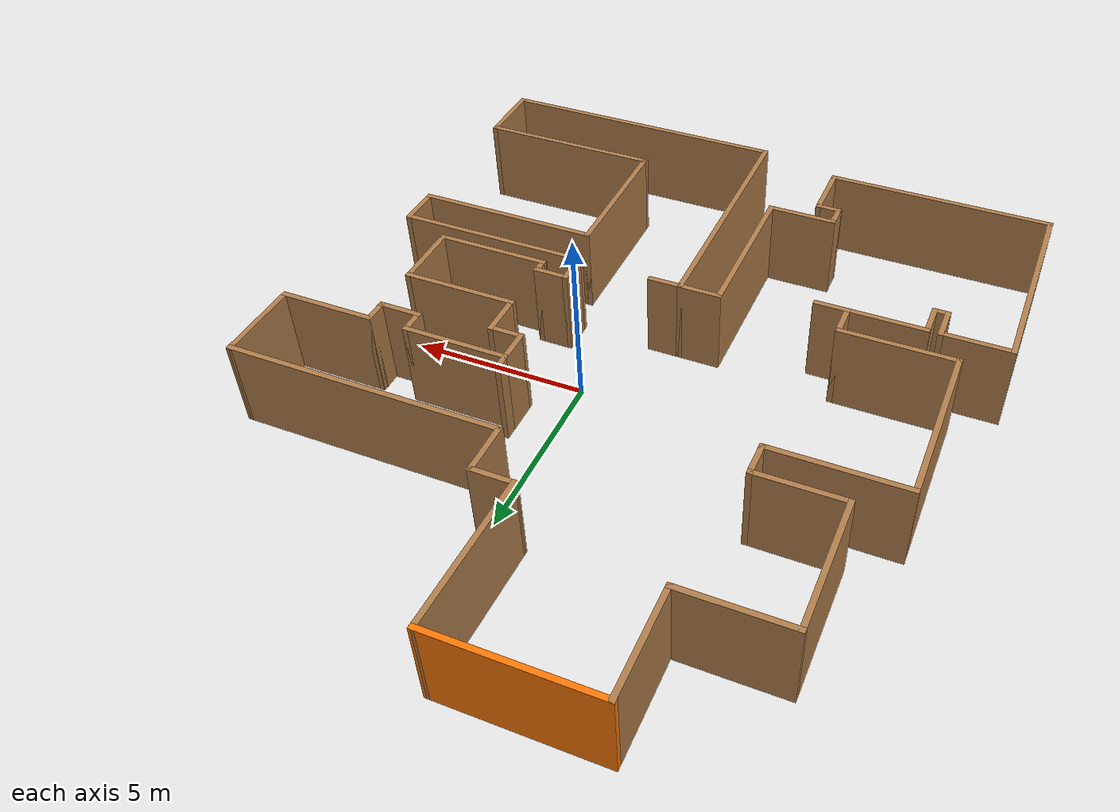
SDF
<?xml version='1.0'?>
<sdf version='1.6'>
  <model name='map_123'>
    <pose frame=''>-1.47589 0.096963 0 0 -0 0</pose>
    <link name='Wall_100'>
      <collision name='Wall_100_Collision'>
        <geometry>
          <box>
            <size>1.25 0.15 2.5</size>
          </box>
        </geometry>
        <pose frame=''>0 0 1.25 0 -0 0</pose>
      </collision>
      <visual name='Wall_100_Visual'>
        <pose frame=''>0 0 1.25 0 -0 0</pose>
        <geometry>
          <box>
            <size>1.25 0.15 2.5</size>
          </box>
        </geometry>
        <material>
          <script>
            <uri>file://media/materials/scripts/gazebo.material</uri>
            <name>Gazebo/Wood</name>
          </script>
          <ambient>1 1 1 1</ambient>
        </material>
        <meta>
          <layer>0</layer>
        </meta>
      </visual>
      <pose frame=''>0.978363 5.41027 0 0 -0 0</pose>
    </link>
    <link name='Wall_101'>
      <collision name='Wall_101_Collision'>
        <geometry>
          <box>
            <size>1.5 0.15 2.5</size>
          </box>
        </geometry>
        <pose frame=''>0 0 1.25 0 -0 0</pose>
      </collision>
      <visual name='Wall_101_Visual'>
        <pose frame=''>0 0 1.25 0 -0 0</pose>
        <geometry>
          <box>
            <size>1.5 0.15 2.5</size>
          </box>
        </geometry>
        <material>
          <script>
            <uri>file://media/materials/scripts/gazebo.material</uri>
            <name>Gazebo/Wood</name>
          </script>
          <ambient>1 1 1 1</ambient>
        </material>
        <meta>
          <layer>0</layer>
        </meta>
      </visual>
      <pose frame=''>1.52836 4.73527 0 0 -0 -1.5708</pose>
    </link>
    <link name='Wall_104'>
      <collision name='Wall_104_Collision'>
        <geometry>
          <box>
            <size>7.75 0.15 2.5</size>
          </box>
        </geometry>
        <pose frame=''>0 0 1.25 0 -0 0</pose>
      </collision>
      <visual name='Wall_104_Visual'>
        <pose frame=''>0 0 1.25 0 -0 0</pose>
        <geometry>
          <box>
            <size>7.75 0.15 2.5</size>
          </box>
        </geometry>
        <material>
          <script>
            <uri>file://media/materials/scripts/gazebo.material</uri>
            <name>Gazebo/Wood</name>
          </script>
          <ambient>1 1 1 1</ambient>
        </material>
        <meta>
          <layer>0</layer>
        </meta>
      </visual>
      <pose frame=''>5.32836 4.06027 0 0 -0 0</pose>
    </link>
    <link name='Wall_105'>
      <collision name='Wall_105_Collision'>
        <geometry>
          <box>
            <size>2.43611 0.15 2.5</size>
          </box>
        </geometry>
        <pose frame=''>0 0 1.25 0 -0 0</pose>
      </collision>
      <visual name='Wall_105_Visual'>
        <pose frame=''>0 0 1.25 0 -0 0</pose>
        <geometry>
          <box>
            <size>2.43611 0.15 2.5</size>
          </box>
        </geometry>
        <material>
          <script>
            <uri>file://media/materials/scripts/gazebo.material</uri>
            <name>Gazebo/Wood</name>
          </script>
          <ambient>1 1 1 1</ambient>
        </material>
        <meta>
          <layer>0</layer>
        </meta>
      </visual>
      <pose frame=''>9.12489 2.91722 0 0 -0 -1.57384</pose>
    </link>
    <link name='Wall_107'>
      <collision name='Wall_107_Collision'>
        <geometry>
          <box>
            <size>0.5 0.15 2.5</size>
          </box>
        </geometry>
        <pose frame=''>0 0 1.25 0 -0 0</pose>
      </collision>
      <visual name='Wall_107_Visual'>
        <pose frame=''>0 0 1.25 0 -0 0</pose>
        <geometry>
          <box>
            <size>0.5 0.15 2.5</size>
          </box>
        </geometry>
        <material>
          <script>
            <uri>file://media/materials/scripts/gazebo.material</uri>
            <name>Gazebo/Wood</name>
          </script>
          <ambient>1 1 1 1</ambient>
        </material>
        <meta>
          <layer>0</layer>
        </meta>
      </visual>
      <pose frame=''>2.57141 1.94917 0 0 -0 1.5708</pose>
    </link>
    <link name='Wall_109'>
      <collision name='Wall_109_Collision'>
        <geometry>
          <box>
            <size>1 0.15 2.5</size>
          </box>
        </geometry>
        <pose frame=''>0 0 1.25 0 -0 0</pose>
      </collision>
      <visual name='Wall_109_Visual'>
        <pose frame=''>0 0 1.25 0 -0 0</pose>
        <geometry>
          <box>
            <size>1 0.15 2.5</size>
          </box>
        </geometry>
        <material>
          <script>
            <uri>file://media/materials/scripts/gazebo.material</uri>
            <name>Gazebo/Wood</name>
          </script>
          <ambient>1 1 1 1</ambient>
        </material>
        <meta>
          <layer>0</layer>
        </meta>
      </visual>
      <pose frame=''>-0.003589 -2.47583 0 0 -0 0</pose>
    </link>
    <link name='Wall_111'>
      <collision name='Wall_111_Collision'>
        <geometry>
          <box>
            <size>1 0.15 2.5</size>
          </box>
        </geometry>
        <pose frame=''>0 0 1.25 0 -0 0</pose>
      </collision>
      <visual name='Wall_111_Visual'>
        <pose frame=''>0 0 1.25 0 -0 0</pose>
        <geometry>
          <box>
            <size>1 0.15 2.5</size>
          </box>
        </geometry>
        <material>
          <script>
            <uri>file://media/materials/scripts/gazebo.material</uri>
            <name>Gazebo/Wood</name>
          </script>
          <ambient>1 1 1 1</ambient>
        </material>
        <meta>
          <layer>0</layer>
        </meta>
      </visual>
      <pose frame=''>-4.40359 -3.17583 0 0 -0 0</pose>
    </link>
    <link name='Wall_17'>
      <collision name='Wall_17_Collision'>
        <geometry>
          <box>
            <size>3 0.15 2.5</size>
          </box>
        </geometry>
        <pose frame=''>0 0 1.25 0 -0 0</pose>
      </collision>
      <visual name='Wall_17_Visual'>
        <pose frame=''>0 0 1.25 0 -0 0</pose>
        <geometry>
          <box>
            <size>3 0.15 2.5</size>
          </box>
        </geometry>
        <material>
          <script>
            <uri>file://media/materials/scripts/gazebo.material</uri>
            <name>Gazebo/Wood</name>
          </script>
          <ambient>1 1 1 1</ambient>
        </material>
        <meta>
          <layer>0</layer>
        </meta>
      </visual>
      <pose frame=''>-3.82859 8.14917 0 0 -0 -1.5708</pose>
    </link>
    <link name='Wall_20'>
      <collision name='Wall_20_Collision'>
        <geometry>
          <box>
            <size>3 0.15 2.5</size>
          </box>
        </geometry>
        <pose frame=''>0 0 1.25 0 -0 0</pose>
      </collision>
      <visual name='Wall_20_Visual'>
        <pose frame=''>0 0 1.25 0 -0 0</pose>
        <geometry>
          <box>
            <size>3 0.15 2.5</size>
          </box>
        </geometry>
        <material>
          <script>
            <uri>file://media/materials/scripts/gazebo.material</uri>
            <name>Gazebo/Wood</name>
          </script>
          <ambient>1 1 1 1</ambient>
        </material>
        <meta>
          <layer>0</layer>
        </meta>
      </visual>
      <pose frame=''>-5.25359 6.72417 0 0 -0 3.14159</pose>
    </link>
    <link name='Wall_21'>
      <collision name='Wall_21_Collision'>
        <geometry>
          <box>
            <size>3.75 0.15 2.5</size>
          </box>
        </geometry>
        <pose frame=''>0 0 1.25 0 -0 0</pose>
      </collision>
      <visual name='Wall_21_Visual'>
        <pose frame=''>0 0 1.25 0 -0 0</pose>
        <geometry>
          <box>
            <size>3.75 0.15 2.5</size>
          </box>
        </geometry>
        <material>
          <script>
            <uri>file://media/materials/scripts/gazebo.material</uri>
            <name>Gazebo/Wood</name>
          </script>
          <ambient>1 1 1 1</ambient>
        </material>
        <meta>
          <layer>0</layer>
        </meta>
      </visual>
      <pose frame=''>-6.67859 4.92417 0 0 -0 -1.5708</pose>
    </link>
    <link name='Wall_22'>
      <collision name='Wall_22_Collision'>
        <geometry>
          <box>
            <size>2.5 0.15 2.5</size>
          </box>
        </geometry>
        <pose frame=''>0 0 1.25 0 -0 0</pose>
      </collision>
      <visual name='Wall_22_Visual'>
        <pose frame=''>0 0 1.25 0 -0 0</pose>
        <geometry>
          <box>
            <size>2.5 0.15 2.5</size>
          </box>
        </geometry>
        <material>
          <script>
            <uri>file://media/materials/scripts/gazebo.material</uri>
            <name>Gazebo/Wood</name>
          </script>
          <ambient>1 1 1 1</ambient>
        </material>
        <meta>
          <layer>0</layer>
        </meta>
      </visual>
      <pose frame=''>-5.50359 3.12417 0 0 -0 0</pose>
    </link>
    <link name='Wall_23'>
      <collision name='Wall_23_Collision'>
        <geometry>
          <box>
            <size>1 0.15 2.5</size>
          </box>
        </geometry>
        <pose frame=''>0 0 1.25 0 -0 0</pose>
      </collision>
      <visual name='Wall_23_Visual'>
        <pose frame=''>0 0 1.25 0 -0 0</pose>
        <geometry>
          <box>
            <size>1 0.15 2.5</size>
          </box>
        </geometry>
        <material>
          <script>
            <uri>file://media/materials/scripts/gazebo.material</uri>
            <name>Gazebo/Wood</name>
          </script>
          <ambient>1 1 1 1</ambient>
        </material>
        <meta>
          <layer>0</layer>
        </meta>
      </visual>
      <pose frame=''>-4.32859 2.69917 0 0 -0 -1.5708</pose>
    </link>
    <link name='Wall_24'>
      <collision name='Wall_24_Collision'>
        <geometry>
          <box>
            <size>3.75 0.15 2.5</size>
          </box>
        </geometry>
        <pose frame=''>0 0 1.25 0 -0 0</pose>
      </collision>
      <visual name='Wall_24_Visual'>
        <pose frame=''>0 0 1.25 0 -0 0</pose>
        <geometry>
          <box>
            <size>3.75 0.15 2.5</size>
          </box>
        </geometry>
        <material>
          <script>
            <uri>file://media/materials/scripts/gazebo.material</uri>
            <name>Gazebo/Wood</name>
          </script>
          <ambient>1 1 1 1</ambient>
        </material>
        <meta>
          <layer>0</layer>
        </meta>
      </visual>
      <pose frame=''>-6.12859 2.27417 0 0 -0 3.14159</pose>
    </link>
    <link name='Wall_25'>
      <collision name='Wall_25_Collision'>
        <geometry>
          <box>
            <size>4.75 0.15 2.5</size>
          </box>
        </geometry>
        <pose frame=''>0 0 1.25 0 -0 0</pose>
      </collision>
      <visual name='Wall_25_Visual'>
        <pose frame=''>0 0 1.25 0 -0 0</pose>
        <geometry>
          <box>
            <size>4.75 0.15 2.5</size>
          </box>
        </geometry>
        <material>
          <script>
            <uri>file://media/materials/scripts/gazebo.material</uri>
            <name>Gazebo/Wood</name>
          </script>
          <ambient>1 1 1 1</ambient>
        </material>
        <meta>
          <layer>0</layer>
        </meta>
      </visual>
      <pose frame=''>-7.92859 -0.025828 0 0 -0 -1.5708</pose>
    </link>
    <link name='Wall_26'>
      <collision name='Wall_26_Collision'>
        <geometry>
          <box>
            <size>3.25 0.15 2.5</size>
          </box>
        </geometry>
        <pose frame=''>0 0 1.25 0 -0 0</pose>
      </collision>
      <visual name='Wall_26_Visual'>
        <pose frame=''>0 0 1.25 0 -0 0</pose>
        <geometry>
          <box>
            <size>3.25 0.15 2.5</size>
          </box>
        </geometry>
        <material>
          <script>
            <uri>file://media/materials/scripts/gazebo.material</uri>
            <name>Gazebo/Wood</name>
          </script>
          <ambient>1 1 1 1</ambient>
        </material>
        <meta>
          <layer>0</layer>
        </meta>
      </visual>
      <pose frame=''>-6.37859 -2.32583 0 0 -0 0</pose>
    </link>
    <link name='Wall_27'>
      <collision name='Wall_27_Collision'>
        <geometry>
          <box>
            <size>1 0.15 2.5</size>
          </box>
        </geometry>
        <pose frame=''>0 0 1.25 0 -0 0</pose>
      </collision>
      <visual name='Wall_27_Visual'>
        <pose frame=''>0 0 1.25 0 -0 0</pose>
        <geometry>
          <box>
            <size>1 0.15 2.5</size>
          </box>
        </geometry>
        <material>
          <script>
            <uri>file://media/materials/scripts/gazebo.material</uri>
            <name>Gazebo/Wood</name>
          </script>
          <ambient>1 1 1 1</ambient>
        </material>
        <meta>
          <layer>0</layer>
        </meta>
      </visual>
      <pose frame=''>-4.82859 -2.75083 0 0 -0 -1.5708</pose>
    </link>
    <link name='Wall_28'>
      <collision name='Wall_28_Collision'>
        <geometry>
          <box>
            <size>2.25 0.15 2.5</size>
          </box>
        </geometry>
        <pose frame=''>0 0 1.25 0 -0 0</pose>
      </collision>
      <visual name='Wall_28_Visual'>
        <pose frame=''>0 0 1.25 0 -0 0</pose>
        <geometry>
          <box>
            <size>2.25 0.15 2.5</size>
          </box>
        </geometry>
        <material>
          <script>
            <uri>file://media/materials/scripts/gazebo.material</uri>
            <name>Gazebo/Wood</name>
          </script>
          <ambient>1 1 1 1</ambient>
        </material>
        <meta>
          <layer>0</layer>
        </meta>
      </visual>
      <pose frame=''>-5.87859 -3.17583 0 0 -0 3.14159</pose>
    </link>
    <link name='Wall_29'>
      <collision name='Wall_29_Collision'>
        <geometry>
          <box>
            <size>1 0.15 2.5</size>
          </box>
        </geometry>
        <pose frame=''>0 0 1.25 0 -0 0</pose>
      </collision>
      <visual name='Wall_29_Visual'>
        <pose frame=''>0 0 1.25 0 -0 0</pose>
        <geometry>
          <box>
            <size>1 0.15 2.5</size>
          </box>
        </geometry>
        <material>
          <script>
            <uri>file://media/materials/scripts/gazebo.material</uri>
            <name>Gazebo/Wood</name>
          </script>
          <ambient>1 1 1 1</ambient>
        </material>
        <meta>
          <layer>0</layer>
        </meta>
      </visual>
      <pose frame=''>-6.92859 -3.60083 0 0 -0 -1.5708</pose>
    </link>
    <link name='Wall_30'>
      <collision name='Wall_30_Collision'>
        <geometry>
          <box>
            <size>0.5 0.15 2.5</size>
          </box>
        </geometry>
        <pose frame=''>0 0 1.25 0 -0 0</pose>
      </collision>
      <visual name='Wall_30_Visual'>
        <pose frame=''>0 0 1.25 0 -0 0</pose>
        <geometry>
          <box>
            <size>0.5 0.15 2.5</size>
          </box>
        </geometry>
        <material>
          <script>
            <uri>file://media/materials/scripts/gazebo.material</uri>
            <name>Gazebo/Wood</name>
          </script>
          <ambient>1 1 1 1</ambient>
        </material>
        <meta>
          <layer>0</layer>
        </meta>
      </visual>
      <pose frame=''>-7.10359 -4.02583 0 0 -0 3.14159</pose>
    </link>
    <link name='Wall_31'>
      <collision name='Wall_31_Collision'>
        <geometry>
          <box>
            <size>1 0.15 2.5</size>
          </box>
        </geometry>
        <pose frame=''>0 0 1.25 0 -0 0</pose>
      </collision>
      <visual name='Wall_31_Visual'>
        <pose frame=''>0 0 1.25 0 -0 0</pose>
        <geometry>
          <box>
            <size>1 0.15 2.5</size>
          </box>
        </geometry>
        <material>
          <script>
            <uri>file://media/materials/scripts/gazebo.material</uri>
            <name>Gazebo/Wood</name>
          </script>
          <ambient>1 1 1 1</ambient>
        </material>
        <meta>
          <layer>0</layer>
        </meta>
      </visual>
      <pose frame=''>-7.27859 -3.60083 0 0 -0 1.5708</pose>
    </link>
    <link name='Wall_32'>
      <collision name='Wall_32_Collision'>
        <geometry>
          <box>
            <size>2 0.15 2.5</size>
          </box>
        </geometry>
        <pose frame=''>0 0 1.25 0 -0 0</pose>
      </collision>
      <visual name='Wall_32_Visual'>
        <pose frame=''>0 0 1.25 0 -0 0</pose>
        <geometry>
          <box>
            <size>2 0.15 2.5</size>
          </box>
        </geometry>
        <material>
          <script>
            <uri>file://media/materials/scripts/gazebo.material</uri>
            <name>Gazebo/Wood</name>
          </script>
          <ambient>1 1 1 1</ambient>
        </material>
        <meta>
          <layer>0</layer>
        </meta>
      </visual>
      <pose frame=''>-8.20359 -3.17583 0 0 -0 3.14159</pose>
    </link>
    <link name='Wall_33'>
      <collision name='Wall_33_Collision'>
        <geometry>
          <box>
            <size>6 0.15 2.5</size>
          </box>
        </geometry>
        <pose frame=''>0 0 1.25 0 -0 0</pose>
      </collision>
      <visual name='Wall_33_Visual'>
        <pose frame=''>0 0 1.25 0 -0 0</pose>
        <geometry>
          <box>
            <size>6 0.15 2.5</size>
          </box>
        </geometry>
        <material>
          <script>
            <uri>file://media/materials/scripts/gazebo.material</uri>
            <name>Gazebo/Wood</name>
          </script>
          <ambient>1 1 1 1</ambient>
        </material>
        <meta>
          <layer>0</layer>
        </meta>
      </visual>
      <pose frame=''>-9.12859 -6.10083 0 0 -0 -1.5708</pose>
    </link>
    <link name='Wall_34'>
      <collision name='Wall_34_Collision'>
        <geometry>
          <box>
            <size>6.5 0.15 2.5</size>
          </box>
        </geometry>
        <pose frame=''>0 0 1.25 0 -0 0</pose>
      </collision>
      <visual name='Wall_34_Visual'>
        <pose frame=''>0 0 1.25 0 -0 0</pose>
        <geometry>
          <box>
            <size>6.5 0.15 2.5</size>
          </box>
        </geometry>
        <material>
          <script>
            <uri>file://media/materials/scripts/gazebo.material</uri>
            <name>Gazebo/Wood</name>
          </script>
          <ambient>1 1 1 1</ambient>
        </material>
        <meta>
          <layer>0</layer>
        </meta>
      </visual>
      <pose frame=''>-5.95359 -9.02583 0 0 -0 0</pose>
    </link>
    <link name='Wall_35'>
      <collision name='Wall_35_Collision'>
        <geometry>
          <box>
            <size>1.75 0.15 2.5</size>
          </box>
        </geometry>
        <pose frame=''>0 0 1.25 0 -0 0</pose>
      </collision>
      <visual name='Wall_35_Visual'>
        <pose frame=''>0 0 1.25 0 -0 0</pose>
        <geometry>
          <box>
            <size>1.75 0.15 2.5</size>
          </box>
        </geometry>
        <material>
          <script>
            <uri>file://media/materials/scripts/gazebo.material</uri>
            <name>Gazebo/Wood</name>
          </script>
          <ambient>1 1 1 1</ambient>
        </material>
        <meta>
          <layer>0</layer>
        </meta>
      </visual>
      <pose frame=''>-2.77859 -8.22583 0 0 -0 1.5708</pose>
    </link>
    <link name='Wall_36'>
      <collision name='Wall_36_Collision'>
        <geometry>
          <box>
            <size>0.75 0.15 2.5</size>
          </box>
        </geometry>
        <pose frame=''>0 0 1.25 0 -0 0</pose>
      </collision>
      <visual name='Wall_36_Visual'>
        <pose frame=''>0 0 1.25 0 -0 0</pose>
        <geometry>
          <box>
            <size>0.75 0.15 2.5</size>
          </box>
        </geometry>
        <material>
          <script>
            <uri>file://media/materials/scripts/gazebo.material</uri>
            <name>Gazebo/Wood</name>
          </script>
          <ambient>1 1 1 1</ambient>
        </material>
        <meta>
          <layer>0</layer>
        </meta>
      </visual>
      <pose frame=''>-3.07859 -7.42583 0 0 -0 3.14159</pose>
    </link>
    <link name='Wall_37'>
      <collision name='Wall_37_Collision'>
        <geometry>
          <box>
            <size>0.75 0.15 2.5</size>
          </box>
        </geometry>
        <pose frame=''>0 0 1.25 0 -0 0</pose>
      </collision>
      <visual name='Wall_37_Visual'>
        <pose frame=''>0 0 1.25 0 -0 0</pose>
        <geometry>
          <box>
            <size>0.75 0.15 2.5</size>
          </box>
        </geometry>
        <material>
          <script>
            <uri>file://media/materials/scripts/gazebo.material</uri>
            <name>Gazebo/Wood</name>
          </script>
          <ambient>1 1 1 1</ambient>
        </material>
        <meta>
          <layer>0</layer>
        </meta>
      </visual>
      <pose frame=''>-3.37859 -7.12583 0 0 -0 1.5708</pose>
    </link>
    <link name='Wall_38'>
      <collision name='Wall_38_Collision'>
        <geometry>
          <box>
            <size>2 0.15 2.5</size>
          </box>
        </geometry>
        <pose frame=''>0 0 1.25 0 -0 0</pose>
      </collision>
      <visual name='Wall_38_Visual'>
        <pose frame=''>0 0 1.25 0 -0 0</pose>
        <geometry>
          <box>
            <size>2 0.15 2.5</size>
          </box>
        </geometry>
        <material>
          <script>
            <uri>file://media/materials/scripts/gazebo.material</uri>
            <name>Gazebo/Wood</name>
          </script>
          <ambient>1 1 1 1</ambient>
        </material>
        <meta>
          <layer>0</layer>
        </meta>
      </visual>
      <pose frame=''>-2.45359 -6.82583 0 0 -0 0</pose>
    </link>
    <link name='Wall_39'>
      <collision name='Wall_39_Collision'>
        <geometry>
          <box>
            <size>4.5 0.15 2.5</size>
          </box>
        </geometry>
        <pose frame=''>0 0 1.25 0 -0 0</pose>
      </collision>
      <visual name='Wall_39_Visual'>
        <pose frame=''>0 0 1.25 0 -0 0</pose>
        <geometry>
          <box>
            <size>4.5 0.15 2.5</size>
          </box>
        </geometry>
        <material>
          <script>
            <uri>file://media/materials/scripts/gazebo.material</uri>
            <name>Gazebo/Wood</name>
          </script>
          <ambient>1 1 1 1</ambient>
        </material>
        <meta>
          <layer>0</layer>
        </meta>
      </visual>
      <pose frame=''>-1.52859 -4.65083 0 0 -0 1.5708</pose>
    </link>
    <link name='Wall_40'>
      <collision name='Wall_40_Collision'>
        <geometry>
          <box>
            <size>1.25 0.15 2.5</size>
          </box>
        </geometry>
        <pose frame=''>0 0 1.25 0 -0 0</pose>
      </collision>
      <visual name='Wall_40_Visual'>
        <pose frame=''>0 0 1.25 0 -0 0</pose>
        <geometry>
          <box>
            <size>1.25 0.15 2.5</size>
          </box>
        </geometry>
        <material>
          <script>
            <uri>file://media/materials/scripts/gazebo.material</uri>
            <name>Gazebo/Wood</name>
          </script>
          <ambient>1 1 1 1</ambient>
        </material>
        <meta>
          <layer>0</layer>
        </meta>
      </visual>
      <pose frame=''>-0.97859 -2.47583 0 0 -0 0</pose>
    </link>
    <link name='Wall_41'>
      <collision name='Wall_41_Collision'>
        <geometry>
          <box>
            <size>7.25 0.15 2.5</size>
          </box>
        </geometry>
        <pose frame=''>0 0 1.25 0 -0 0</pose>
      </collision>
      <visual name='Wall_41_Visual'>
        <pose frame=''>0 0 1.25 0 -0 0</pose>
        <geometry>
          <box>
            <size>7.25 0.15 2.5</size>
          </box>
        </geometry>
        <material>
          <script>
            <uri>file://media/materials/scripts/gazebo.material</uri>
            <name>Gazebo/Wood</name>
          </script>
          <ambient>1 1 1 1</ambient>
        </material>
        <meta>
          <layer>0</layer>
        </meta>
      </visual>
      <pose frame=''>-0.428589 -6.02583 0 0 -0 -1.5708</pose>
    </link>
    <link name='Wall_43'>
      <collision name='Wall_43_Collision'>
        <geometry>
          <box>
            <size>8.5 0.15 2.5</size>
          </box>
        </geometry>
        <pose frame=''>0 0 1.25 0 -0 0</pose>
      </collision>
      <visual name='Wall_43_Visual'>
        <pose frame=''>0 0 1.25 0 -0 0</pose>
        <geometry>
          <box>
            <size>8.5 0.15 2.5</size>
          </box>
        </geometry>
        <material>
          <script>
            <uri>file://media/materials/scripts/gazebo.material</uri>
            <name>Gazebo/Wood</name>
          </script>
          <ambient>1 1 1 1</ambient>
        </material>
        <meta>
          <layer>0</layer>
        </meta>
      </visual>
      <pose frame=''>3.74641 -9.57583 0 0 -0 0</pose>
    </link>
    <link name='Wall_44'>
      <collision name='Wall_44_Collision'>
        <geometry>
          <box>
            <size>2 0.15 2.5</size>
          </box>
        </geometry>
        <pose frame=''>0 0 1.25 0 -0 0</pose>
      </collision>
      <visual name='Wall_44_Visual'>
        <pose frame=''>0 0 1.25 0 -0 0</pose>
        <geometry>
          <box>
            <size>2 0.15 2.5</size>
          </box>
        </geometry>
        <material>
          <script>
            <uri>file://media/materials/scripts/gazebo.material</uri>
            <name>Gazebo/Wood</name>
          </script>
          <ambient>1 1 1 1</ambient>
        </material>
        <meta>
          <layer>0</layer>
        </meta>
      </visual>
      <pose frame=''>7.92141 -8.65083 0 0 -0 1.5708</pose>
    </link>
    <link name='Wall_45'>
      <collision name='Wall_45_Collision'>
        <geometry>
          <box>
            <size>5.25 0.15 2.5</size>
          </box>
        </geometry>
        <pose frame=''>0 0 1.25 0 -0 0</pose>
      </collision>
      <visual name='Wall_45_Visual'>
        <pose frame=''>0 0 1.25 0 -0 0</pose>
        <geometry>
          <box>
            <size>5.25 0.15 2.5</size>
          </box>
        </geometry>
        <material>
          <script>
            <uri>file://media/materials/scripts/gazebo.material</uri>
            <name>Gazebo/Wood</name>
          </script>
          <ambient>1 1 1 1</ambient>
        </material>
        <meta>
          <layer>0</layer>
        </meta>
      </visual>
      <pose frame=''>5.37141 -7.72583 0 0 -0 3.14159</pose>
    </link>
    <link name='Wall_46'>
      <collision name='Wall_46_Collision'>
        <geometry>
          <box>
            <size>4.25 0.15 2.5</size>
          </box>
        </geometry>
        <pose frame=''>0 0 1.25 0 -0 0</pose>
      </collision>
      <visual name='Wall_46_Visual'>
        <pose frame=''>0 0 1.25 0 -0 0</pose>
        <geometry>
          <box>
            <size>4.25 0.15 2.5</size>
          </box>
        </geometry>
        <material>
          <script>
            <uri>file://media/materials/scripts/gazebo.material</uri>
            <name>Gazebo/Wood</name>
          </script>
          <ambient>1 1 1 1</ambient>
        </material>
        <meta>
          <layer>0</layer>
        </meta>
      </visual>
      <pose frame=''>2.82141 -5.67583 0 0 -0 1.5708</pose>
    </link>
    <link name='Wall_47'>
      <collision name='Wall_47_Collision'>
        <geometry>
          <box>
            <size>5.25 0.15 2.5</size>
          </box>
        </geometry>
        <pose frame=''>0 0 1.25 0 -0 0</pose>
      </collision>
      <visual name='Wall_47_Visual'>
        <pose frame=''>0 0 1.25 0 -0 0</pose>
        <geometry>
          <box>
            <size>5.25 0.15 2.5</size>
          </box>
        </geometry>
        <material>
          <script>
            <uri>file://media/materials/scripts/gazebo.material</uri>
            <name>Gazebo/Wood</name>
          </script>
          <ambient>1 1 1 1</ambient>
        </material>
        <meta>
          <layer>0</layer>
        </meta>
      </visual>
      <pose frame=''>5.37141 -3.62583 0 0 -0 0</pose>
    </link>
    <link name='Wall_70'>
      <collision name='Wall_70_Collision'>
        <geometry>
          <box>
            <size>1.25 0.15 2.5</size>
          </box>
        </geometry>
        <pose frame=''>0 0 1.25 0 -0 0</pose>
      </collision>
      <visual name='Wall_70_Visual'>
        <pose frame=''>0 0 1.25 0 -0 0</pose>
        <geometry>
          <box>
            <size>1.25 0.15 2.5</size>
          </box>
        </geometry>
        <material>
          <script>
            <uri>file://media/materials/scripts/gazebo.material</uri>
            <name>Gazebo/Wood</name>
          </script>
          <ambient>1 1 1 1</ambient>
        </material>
        <meta>
          <layer>0</layer>
        </meta>
      </visual>
      <pose frame=''>7.92141 -3.07583 0 0 -0 1.5708</pose>
    </link>
    <link name='Wall_71'>
      <collision name='Wall_71_Collision'>
        <geometry>
          <box>
            <size>5.5 0.15 2.5</size>
          </box>
        </geometry>
        <pose frame=''>0 0 1.25 0 -0 0</pose>
      </collision>
      <visual name='Wall_71_Visual'>
        <pose frame=''>0 0 1.25 0 -0 0</pose>
        <geometry>
          <box>
            <size>5.5 0.15 2.5</size>
          </box>
        </geometry>
        <material>
          <script>
            <uri>file://media/materials/scripts/gazebo.material</uri>
            <name>Gazebo/Wood</name>
          </script>
          <ambient>1 1 1 1</ambient>
        </material>
        <meta>
          <layer>0</layer>
        </meta>
      </visual>
      <pose frame=''>5.24641 -2.52583 0 0 -0 3.14159</pose>
    </link>
    <link name='Wall_72'>
      <collision name='Wall_72_Collision'>
        <geometry>
          <box>
            <size>1 0.15 2.5</size>
          </box>
        </geometry>
        <pose frame=''>0 0 1.25 0 -0 0</pose>
      </collision>
      <visual name='Wall_72_Visual'>
        <pose frame=''>0 0 1.25 0 -0 0</pose>
        <geometry>
          <box>
            <size>1 0.15 2.5</size>
          </box>
        </geometry>
        <material>
          <script>
            <uri>file://media/materials/scripts/gazebo.material</uri>
            <name>Gazebo/Wood</name>
          </script>
          <ambient>1 1 1 1</ambient>
        </material>
        <meta>
          <layer>0</layer>
        </meta>
      </visual>
      <pose frame=''>2.57141 -2.10083 0 0 -0 1.5708</pose>
    </link>
    <link name='Wall_73'>
      <collision name='Wall_73_Collision'>
        <geometry>
          <box>
            <size>1 0.15 2.5</size>
          </box>
        </geometry>
        <pose frame=''>0 0 1.25 0 -0 0</pose>
      </collision>
      <visual name='Wall_73_Visual'>
        <pose frame=''>0 0 1.25 0 -0 0</pose>
        <geometry>
          <box>
            <size>1 0.15 2.5</size>
          </box>
        </geometry>
        <material>
          <script>
            <uri>file://media/materials/scripts/gazebo.material</uri>
            <name>Gazebo/Wood</name>
          </script>
          <ambient>1 1 1 1</ambient>
        </material>
        <meta>
          <layer>0</layer>
        </meta>
      </visual>
      <pose frame=''>2.99641 -1.67583 0 0 -0 0</pose>
    </link>
    <link name='Wall_74'>
      <collision name='Wall_74_Collision'>
        <geometry>
          <box>
            <size>0.5 0.15 2.5</size>
          </box>
        </geometry>
        <pose frame=''>0 0 1.25 0 -0 0</pose>
      </collision>
      <visual name='Wall_74_Visual'>
        <pose frame=''>0 0 1.25 0 -0 0</pose>
        <geometry>
          <box>
            <size>0.5 0.15 2.5</size>
          </box>
        </geometry>
        <material>
          <script>
            <uri>file://media/materials/scripts/gazebo.material</uri>
            <name>Gazebo/Wood</name>
          </script>
          <ambient>1 1 1 1</ambient>
        </material>
        <meta>
          <layer>0</layer>
        </meta>
      </visual>
      <pose frame=''>3.42141 -1.85083 0 0 -0 -1.5708</pose>
    </link>
    <link name='Wall_75'>
      <collision name='Wall_75_Collision'>
        <geometry>
          <box>
            <size>3.25 0.15 2.5</size>
          </box>
        </geometry>
        <pose frame=''>0 0 1.25 0 -0 0</pose>
      </collision>
      <visual name='Wall_75_Visual'>
        <pose frame=''>0 0 1.25 0 -0 0</pose>
        <geometry>
          <box>
            <size>3.25 0.15 2.5</size>
          </box>
        </geometry>
        <material>
          <script>
            <uri>file://media/materials/scripts/gazebo.material</uri>
            <name>Gazebo/Wood</name>
          </script>
          <ambient>1 1 1 1</ambient>
        </material>
        <meta>
          <layer>0</layer>
        </meta>
      </visual>
      <pose frame=''>4.97141 -2.02583 0 0 -0 0</pose>
    </link>
    <link name='Wall_78'>
      <collision name='Wall_78_Collision'>
        <geometry>
          <box>
            <size>2 0.15 2.5</size>
          </box>
        </geometry>
        <pose frame=''>0 0 1.25 0 -0 0</pose>
      </collision>
      <visual name='Wall_78_Visual'>
        <pose frame=''>0 0 1.25 0 -0 0</pose>
        <geometry>
          <box>
            <size>2 0.15 2.5</size>
          </box>
        </geometry>
        <material>
          <script>
            <uri>file://media/materials/scripts/gazebo.material</uri>
            <name>Gazebo/Wood</name>
          </script>
          <ambient>1 1 1 1</ambient>
        </material>
        <meta>
          <layer>0</layer>
        </meta>
      </visual>
      <pose frame=''>6.52141 -1.10083 0 0 -0 1.5708</pose>
    </link>
    <link name='Wall_79'>
      <collision name='Wall_79_Collision'>
        <geometry>
          <box>
            <size>3.25 0.15 2.5</size>
          </box>
        </geometry>
        <pose frame=''>0 0 1.25 0 -0 0</pose>
      </collision>
      <visual name='Wall_79_Visual'>
        <pose frame=''>0 0 1.25 0 -0 0</pose>
        <geometry>
          <box>
            <size>3.25 0.15 2.5</size>
          </box>
        </geometry>
        <material>
          <script>
            <uri>file://media/materials/scripts/gazebo.material</uri>
            <name>Gazebo/Wood</name>
          </script>
          <ambient>1 1 1 1</ambient>
        </material>
        <meta>
          <layer>0</layer>
        </meta>
      </visual>
      <pose frame=''>4.97141 -0.175828 0 0 -0 3.14159</pose>
    </link>
    <link name='Wall_80'>
      <collision name='Wall_80_Collision'>
        <geometry>
          <box>
            <size>1.25 0.15 2.5</size>
          </box>
        </geometry>
        <pose frame=''>0 0 1.25 0 -0 0</pose>
      </collision>
      <visual name='Wall_80_Visual'>
        <pose frame=''>0 0 1.25 0 -0 0</pose>
        <geometry>
          <box>
            <size>1.25 0.15 2.5</size>
          </box>
        </geometry>
        <material>
          <script>
            <uri>file://media/materials/scripts/gazebo.material</uri>
            <name>Gazebo/Wood</name>
          </script>
          <ambient>1 1 1 1</ambient>
        </material>
        <meta>
          <layer>0</layer>
        </meta>
      </visual>
      <pose frame=''>3.42141 0.374172 0 0 -0 1.5708</pose>
    </link>
    <link name='Wall_81'>
      <collision name='Wall_81_Collision'>
        <geometry>
          <box>
            <size>1 0.15 2.5</size>
          </box>
        </geometry>
        <pose frame=''>0 0 1.25 0 -0 0</pose>
      </collision>
      <visual name='Wall_81_Visual'>
        <pose frame=''>0 0 1.25 0 -0 0</pose>
        <geometry>
          <box>
            <size>1 0.15 2.5</size>
          </box>
        </geometry>
        <material>
          <script>
            <uri>file://media/materials/scripts/gazebo.material</uri>
            <name>Gazebo/Wood</name>
          </script>
          <ambient>1 1 1 1</ambient>
        </material>
        <meta>
          <layer>0</layer>
        </meta>
      </visual>
      <pose frame=''>2.99641 0.924172 0 0 -0 3.14159</pose>
    </link>
    <link name='Wall_82'>
      <collision name='Wall_82_Collision'>
        <geometry>
          <box>
            <size>1 0.15 2.5</size>
          </box>
        </geometry>
        <pose frame=''>0 0 1.25 0 -0 0</pose>
      </collision>
      <visual name='Wall_82_Visual'>
        <pose frame=''>0 0 1.25 0 -0 0</pose>
        <geometry>
          <box>
            <size>1 0.15 2.5</size>
          </box>
        </geometry>
        <material>
          <script>
            <uri>file://media/materials/scripts/gazebo.material</uri>
            <name>Gazebo/Wood</name>
          </script>
          <ambient>1 1 1 1</ambient>
        </material>
        <meta>
          <layer>0</layer>
        </meta>
      </visual>
      <pose frame=''>2.57141 1.34917 0 0 -0 1.5708</pose>
    </link>
    <link name='Wall_83'>
      <collision name='Wall_83_Collision'>
        <geometry>
          <box>
            <size>3 0.15 2.5</size>
          </box>
        </geometry>
        <pose frame=''>0 0 1.25 0 -0 0</pose>
      </collision>
      <visual name='Wall_83_Visual'>
        <pose frame=''>0 0 1.25 0 -0 0</pose>
        <geometry>
          <box>
            <size>3 0.15 2.5</size>
          </box>
        </geometry>
        <material>
          <script>
            <uri>file://media/materials/scripts/gazebo.material</uri>
            <name>Gazebo/Wood</name>
          </script>
          <ambient>1 1 1 1</ambient>
        </material>
        <meta>
          <layer>0</layer>
        </meta>
      </visual>
      <pose frame=''>3.99641 1.77417 0 0 -0 0</pose>
    </link>
    <link name='Wall_84'>
      <collision name='Wall_84_Collision'>
        <geometry>
          <box>
            <size>0.75 0.15 2.5</size>
          </box>
        </geometry>
        <pose frame=''>0 0 1.25 0 -0 0</pose>
      </collision>
      <visual name='Wall_84_Visual'>
        <pose frame=''>0 0 1.25 0 -0 0</pose>
        <geometry>
          <box>
            <size>0.75 0.15 2.5</size>
          </box>
        </geometry>
        <material>
          <script>
            <uri>file://media/materials/scripts/gazebo.material</uri>
            <name>Gazebo/Wood</name>
          </script>
          <ambient>1 1 1 1</ambient>
        </material>
        <meta>
          <layer>0</layer>
        </meta>
      </visual>
      <pose frame=''>5.42141 1.47417 0 0 -0 -1.5708</pose>
    </link>
    <link name='Wall_85'>
      <collision name='Wall_85_Collision'>
        <geometry>
          <box>
            <size>1.25 0.15 2.5</size>
          </box>
        </geometry>
        <pose frame=''>0 0 1.25 0 -0 0</pose>
      </collision>
      <visual name='Wall_85_Visual'>
        <pose frame=''>0 0 1.25 0 -0 0</pose>
        <geometry>
          <box>
            <size>1.25 0.15 2.5</size>
          </box>
        </geometry>
        <material>
          <script>
            <uri>file://media/materials/scripts/gazebo.material</uri>
            <name>Gazebo/Wood</name>
          </script>
          <ambient>1 1 1 1</ambient>
        </material>
        <meta>
          <layer>0</layer>
        </meta>
      </visual>
      <pose frame=''>5.97141 1.17417 0 0 -0 0</pose>
    </link>
    <link name='Wall_86'>
      <collision name='Wall_86_Collision'>
        <geometry>
          <box>
            <size>0.75 0.15 2.5</size>
          </box>
        </geometry>
        <pose frame=''>0 0 1.25 0 -0 0</pose>
      </collision>
      <visual name='Wall_86_Visual'>
        <pose frame=''>0 0 1.25 0 -0 0</pose>
        <geometry>
          <box>
            <size>0.75 0.15 2.5</size>
          </box>
        </geometry>
        <material>
          <script>
            <uri>file://media/materials/scripts/gazebo.material</uri>
            <name>Gazebo/Wood</name>
          </script>
          <ambient>1 1 1 1</ambient>
        </material>
        <meta>
          <layer>0</layer>
        </meta>
      </visual>
      <pose frame=''>6.52141 1.47417 0 0 -0 1.5708</pose>
    </link>
    <link name='Wall_87'>
      <collision name='Wall_87_Collision'>
        <geometry>
          <box>
            <size>2.75 0.15 2.5</size>
          </box>
        </geometry>
        <pose frame=''>0 0 1.25 0 -0 0</pose>
      </collision>
      <visual name='Wall_87_Visual'>
        <pose frame=''>0 0 1.25 0 -0 0</pose>
        <geometry>
          <box>
            <size>2.75 0.15 2.5</size>
          </box>
        </geometry>
        <material>
          <script>
            <uri>file://media/materials/scripts/gazebo.material</uri>
            <name>Gazebo/Wood</name>
          </script>
          <ambient>1 1 1 1</ambient>
        </material>
        <meta>
          <layer>0</layer>
        </meta>
      </visual>
      <pose frame=''>7.82141 1.77417 0 0 -0 0</pose>
    </link>
    <link name='Wall_91'>
      <collision name='Wall_91_Collision'>
        <geometry>
          <box>
            <size>4.5 0.15 2.5</size>
          </box>
        </geometry>
        <pose frame=''>0 0 1.25 0 -0 0</pose>
      </collision>
      <visual name='Wall_91_Visual'>
        <pose frame=''>0 0 1.25 0 -0 0</pose>
        <geometry>
          <box>
            <size>4.5 0.15 2.5</size>
          </box>
        </geometry>
        <material>
          <script>
            <uri>file://media/materials/scripts/gazebo.material</uri>
            <name>Gazebo/Grey</name>
          </script>
          <ambient>0.996078 0.47451 0.0196078 1</ambient>
        </material>
        <meta>
          <layer>0</layer>
        </meta>
      </visual>
      <pose frame=''>-1.65359 9.57417 0 0 -0 0</pose>
    </link>
    <link name='Wall_92'>
      <collision name='Wall_92_Collision'>
        <geometry>
          <box>
            <size>4.31494 0.15 2.5</size>
          </box>
        </geometry>
        <pose frame=''>0 0 1.25 0 -0 0</pose>
      </collision>
      <visual name='Wall_92_Visual'>
        <pose frame=''>0 0 1.25 0 -0 0</pose>
        <geometry>
          <box>
            <size>4.31494 0.15 2.5</size>
          </box>
        </geometry>
        <material>
          <script>
            <uri>file://media/materials/scripts/gazebo.material</uri>
            <name>Gazebo/Wood</name>
          </script>
          <ambient>1 1 1 1</ambient>
        </material>
        <meta>
          <layer>0</layer>
        </meta>
      </visual>
      <pose frame=''>0.474887 7.49222 0 0 -0 -1.59314</pose>
    </link>
    <static>1</static>
  </model>
</sdf>
